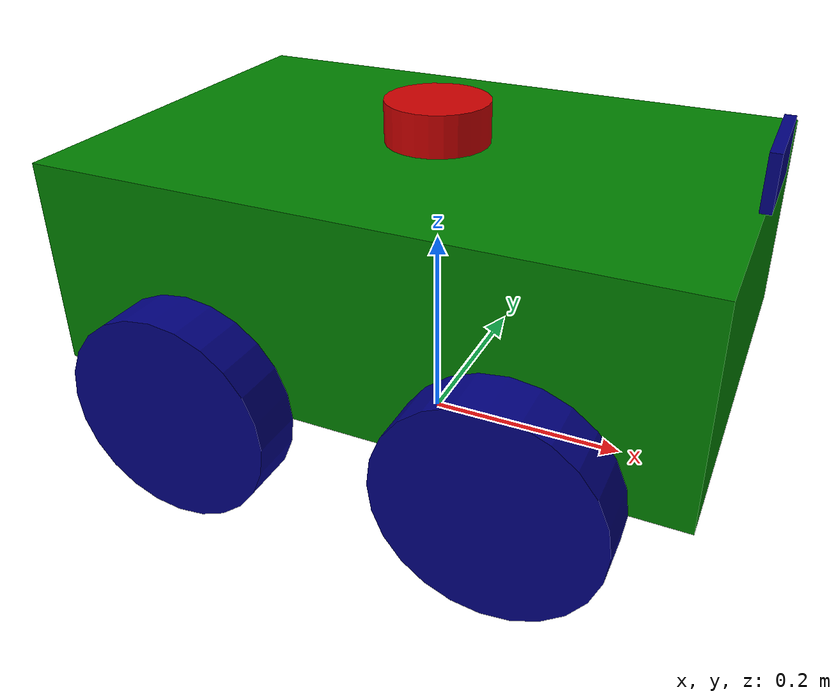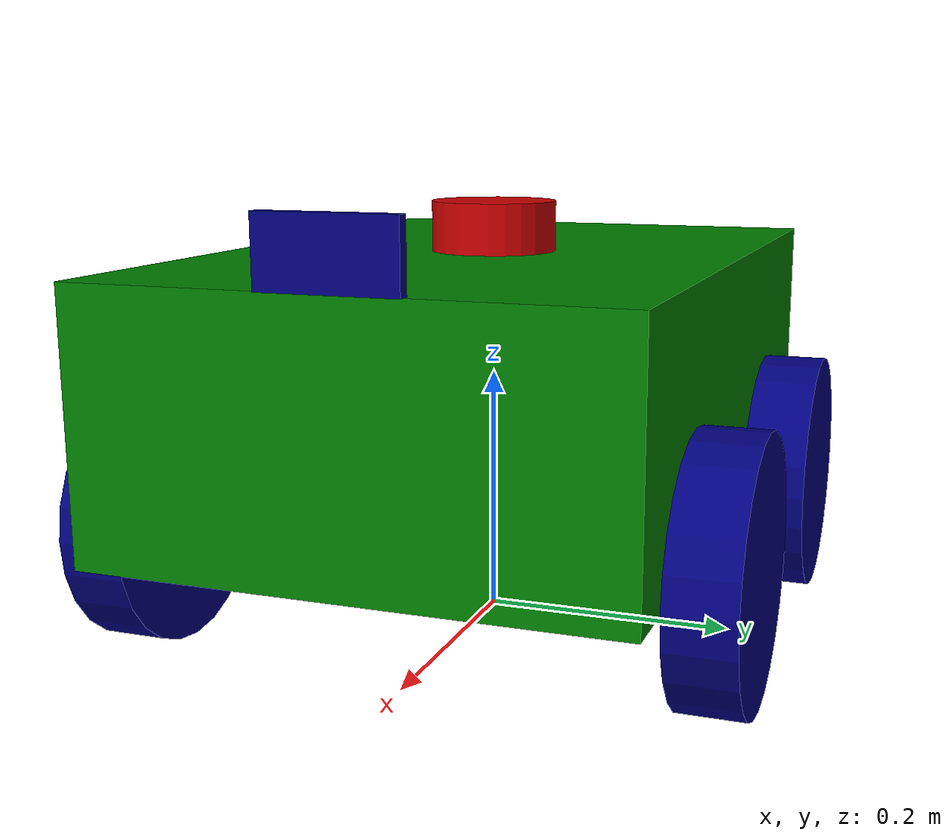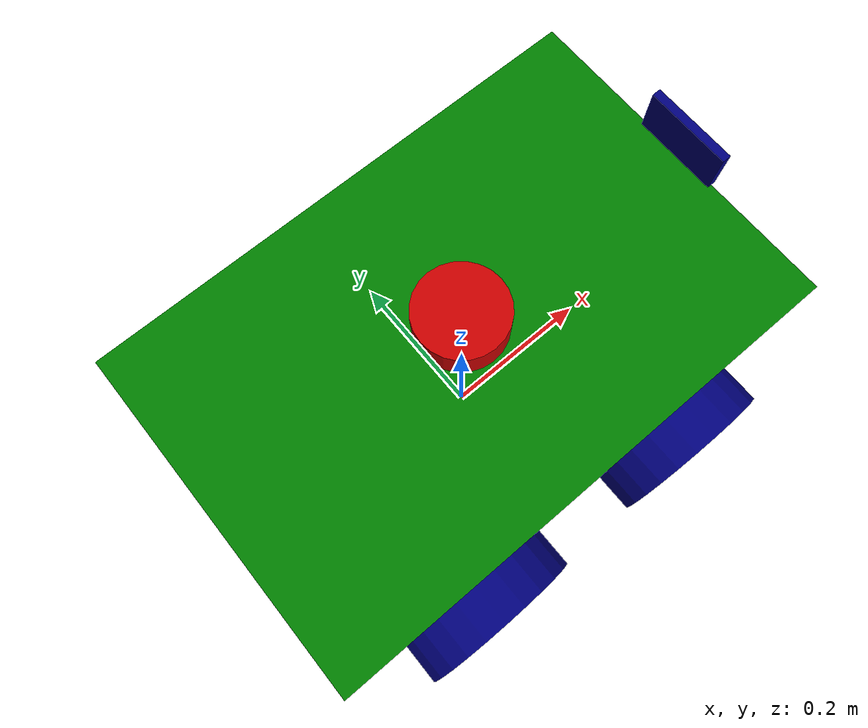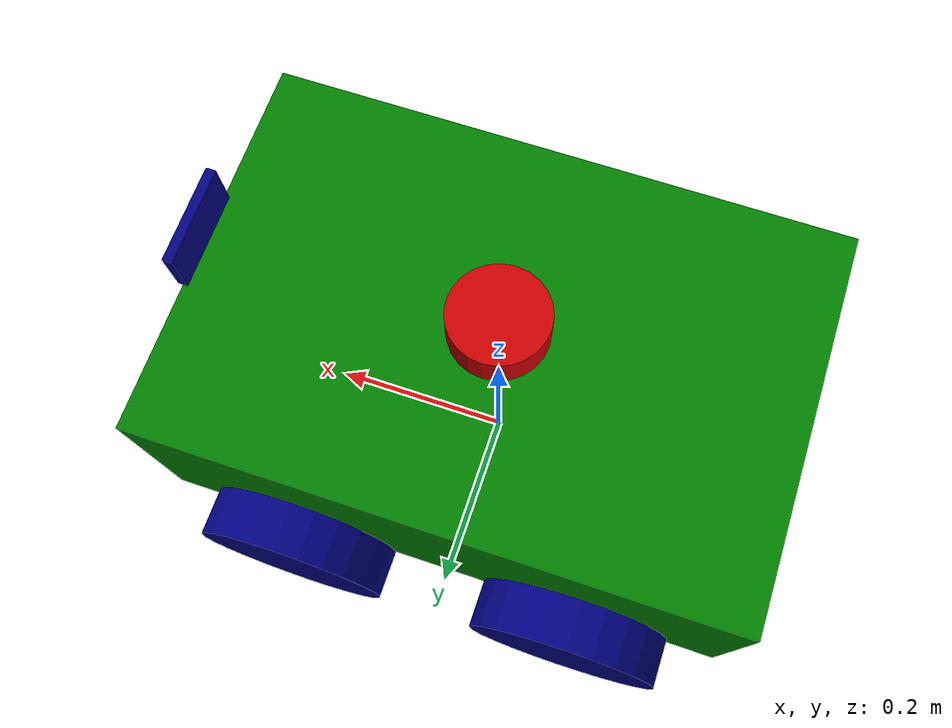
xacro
<?xml version="1.0"?>
<robot name="my_robot" xmlns:xacro="http://www.ros.org/wiki/xacro">

    <xacro:arg name="controllers_config" default="" />

    <xacro:property name="base_length" value="0.6" />
    <xacro:property name="base_width" value="0.4" />
    <xacro:property name="base_height" value="0.2" />
    <xacro:property name="wheel_radius" value="0.1" />
    <xacro:property name="wheel_length" value="0.05" />

    <xacro:macro name="box_inertia" params="m x y z o_xyz o_rpy">
        <inertial>
            <mass value="${m}" />
            <origin xyz="${o_xyz}" rpy="${o_rpy}" />
            <inertia ixx="${(m/12.0) * (y*y + z*z)}" ixy="0" ixz="0"
                     iyy="${(m/12.0) * (x*x + z*z)}" iyz="0"
                     izz="${(m/12.0) * (x*x + y*y)}" />
        </inertial>
    </xacro:macro>

    <xacro:macro name="cylinder_inertia" params="m r h o_xyz o_rpy">
        <inertial>
            <mass value="${m}" />
            <origin xyz="${o_xyz}" rpy="${o_rpy}" />
            <inertia ixx="${(m/12.0) * (3*r*r + h*h)}" ixy="0" ixz="0"
                     iyy="${(m/12.0) * (3*r*r + h*h)}" iyz="0"
                     izz="${(m/2.0) * r*r}" />
        </inertial>
    </xacro:macro>

    <material name="green">
        <color rgba="0 0.5 0 1" />
    </material>

    <material name="blue">
        <color rgba="0 0 0.5 1" />
    </material>

    <material name="red">
        <color rgba="0.8 0 0 1" />
    </material>

    <link name="base_footprint" />

    <link name="base_link">
        <visual>
            <geometry>
                <box size="${base_length} ${base_width} ${base_height}" />
            </geometry>
            <origin xyz="0.0 0.0 ${base_height / 2.0}" rpy="0 0 0" />
            <material name="green" />
        </visual>
        <collision>
            <geometry>
                <box size="${base_length} ${base_width} ${base_height}" />
            </geometry>
            <origin xyz="0.0 0.0 ${base_height / 2.0}" rpy="0 0 0" />
        </collision>

        <xacro:box_inertia m="5" x="${base_length}" y="${base_width}" z="${base_height}" o_xyz="0 0 ${base_height / 2.0}" o_rpy="0 0 0" />
    </link>

    <joint name="base_footprint_joint" type="fixed">
        <parent link="base_footprint" />
        <child link="base_link" />
        <origin xyz="0 0 ${wheel_radius}" rpy="0 0 0" />
    </joint>

    <xacro:macro name="wheel" params="prefix x_reflect y_reflect">
        <link name="${prefix}_wheel_link">
            <visual>
                <geometry>
                    <cylinder radius="${wheel_radius}" length="${wheel_length}" />
                </geometry>
                <origin xyz="0 0 0" rpy="1.5708 0 0" />
                <material name="blue" />
            </visual>

            <collision>
                <geometry>
                    <cylinder radius="${wheel_radius}" length="${wheel_length}" />
                </geometry>
                <origin xyz="0.0 0.0 0" rpy="1.5708 0 0" />
            </collision>

            <xacro:cylinder_inertia m="1" r="${wheel_radius}" h="${wheel_length}" o_xyz="0 0 0" o_rpy="1.5708 0 0" />
        </link>

        <joint name="base_${prefix}_wheel_joint" type="continuous">
            <parent link="base_link" />
            <child link="${prefix}_wheel_link" />
            <origin xyz="${x_reflect * (base_length / 4.0)} ${y_reflect * 0.225} 0" rpy="0 0 0" />
            <axis xyz="0 1 0" />
        </joint>
    </xacro:macro>

    <xacro:wheel prefix="front_right" x_reflect="1"  y_reflect="-1" />
    <xacro:wheel prefix="front_left"  x_reflect="1"  y_reflect="1" />
    <xacro:wheel prefix="rear_right"  x_reflect="-1" y_reflect="-1" />
    <xacro:wheel prefix="rear_left"   x_reflect="-1" y_reflect="1" />

    <!-- ==========================================
         ros2_control hardware interfaces
    ========================================== -->
    <ros2_control name="GazeboSystem" type="system">
        <hardware>
            <plugin>gz_ros2_control/GazeboSimSystem</plugin>
        </hardware>
        <joint name="base_front_left_wheel_joint">
            <command_interface name="velocity"/>
            <state_interface name="position"/>
            <state_interface name="velocity"/>
        </joint>
        <joint name="base_front_right_wheel_joint">
            <command_interface name="velocity"/>
            <state_interface name="position"/>
            <state_interface name="velocity"/>
        </joint>
        <joint name="base_rear_left_wheel_joint">
            <command_interface name="velocity"/>
            <state_interface name="position"/>
            <state_interface name="velocity"/>
        </joint>
        <joint name="base_rear_right_wheel_joint">
            <command_interface name="velocity"/>
            <state_interface name="position"/>
            <state_interface name="velocity"/>
        </joint>
        <!-- IMU sensor state interfaces: lets gz_ros2_control manage the sensor
             and publish it via imu_sensor_broadcaster instead of Gazebo bridge -->
        <sensor name="imu_sensor">
            <state_interface name="orientation.x"/>
            <state_interface name="orientation.y"/>
            <state_interface name="orientation.z"/>
            <state_interface name="orientation.w"/>
            <state_interface name="angular_velocity.x"/>
            <state_interface name="angular_velocity.y"/>
            <state_interface name="angular_velocity.z"/>
            <state_interface name="linear_acceleration.x"/>
            <state_interface name="linear_acceleration.y"/>
            <state_interface name="linear_acceleration.z"/>
        </sensor>
    </ros2_control>

    <!-- gz_ros2_control plugin (starts controller_manager inside Gazebo) -->
    <gazebo>
        <plugin filename="gz_ros2_control-system"
                name="gz_ros2_control::GazeboSimROS2ControlPlugin">
            <parameters>$(arg controllers_config)</parameters>
        </plugin>
    </gazebo>

    <!-- Ground truth odometry from Gazebo model pose -->
    <gazebo>
        <plugin filename="gz-sim-odometry-publisher-system"
                name="gz::sim::systems::OdometryPublisher">
            <odom_frame>odom</odom_frame>
            <robot_base_frame>base_footprint</robot_base_frame>
            <odom_topic>/model/my_robot/ground_truth/odom</odom_topic>
            <tf_topic>/model/my_robot/ground_truth/tf</tf_topic>
            <odom_publish_frequency>50</odom_publish_frequency>
        </plugin>
    </gazebo>

    <!-- Ground truth raw pose (position + orientation only, no velocity) -->
    <gazebo>
        <plugin filename="gz-sim-pose-publisher-system"
                name="gz::sim::systems::PosePublisher">
            <topic>/model/my_robot/pose_gt</topic>
            <publish_link_pose>false</publish_link_pose>
            <publish_visual_pose>false</publish_visual_pose>
            <publish_collision_pose>false</publish_collision_pose>
            <publish_sensor_pose>false</publish_sensor_pose>
            <use_pose_vector_msg>false</use_pose_vector_msg>
            <publish_model_pose>true</publish_model_pose>
            <publish_nested_model_pose>true</publish_nested_model_pose>
        </plugin>
    </gazebo>

    <xacro:property name="camera_length" value="0.01" />
    <xacro:property name="camera_width" value="0.1" />
    <xacro:property name="camera_height" value="0.05" />

    <link name="camera_link">
        <visual>
            <geometry>
                <box size="${camera_length} ${camera_width} ${camera_height}" />
            </geometry>
            <material name="blue" />
        </visual>
        <collision>
            <geometry>
                <box size="${camera_length} ${camera_width} ${camera_height}" />
            </geometry>
        </collision>
        <xacro:box_inertia m="0.1" x="${camera_length}" y="${camera_width}" z="${camera_height}" o_xyz="0 0 0" o_rpy="0 0 0" />
    </link>

    <joint name="base_camera_joint" type="fixed">
        <parent link="base_link" />
        <child link="camera_link" />
        <origin xyz="${base_length / 2.0} 0 ${base_height + camera_height / 2.0}" rpy="0 0 0" />
    </joint>

    <link name="camera_link_optical" />

    <joint name="camera_optical_joint" type="fixed">
        <origin xyz="0 0 0" rpy="${-pi/2} 0 ${-pi/2}" />
            <parent link="camera_link" />
            <child link="camera_link_optical" />
    </joint>

    <gazebo reference="camera_link">
        <sensor name="camera" type="camera">
            <camera>
                <horizontal_fov>1.3962634</horizontal_fov>
                <image>
                    <width>640</width>
                    <height>480</height>
                    <format>R8G8B8</format>
                </image>
                <clip>
                    <near>0.1</near>
                    <far> 15 </far>
                </clip>
                <noise>
                    <type> gaussian </type>
                    <mean> 0.0 </mean>
                    <stddev>0.007 </stddev>
                </noise>
                <optical_frame_id>camera_link_optical</optical_frame_id>
                <camera_info_topic>camera/camera_info</camera_info_topic>
            </camera>
            <always_on>1</always_on>
            <visualize>true</visualize>
            <update_rate>20</update_rate>
            <topic>camera/image_raw</topic>
        </sensor>
    </gazebo>

    <xacro:property name="laser_radius" value="0.05" />
    <xacro:property name="laser_height" value="0.04" />

    <link name="laser_frame">
        <visual>
            <geometry>
                <cylinder radius="${laser_radius}" length="${laser_height}" />
            </geometry>
            <material name="red" />
        </visual>
        <collision>
            <geometry>
                <cylinder radius="${laser_radius}" length="${laser_height}" />
            </geometry>
        </collision>
        <xacro:cylinder_inertia m="0.1" r="${laser_radius}" h="${laser_height}" o_xyz="0 0 0" o_rpy="0 0 0" />
    </link>

    <joint name="base_laser_joint" type="fixed">
        <parent link="base_link" />
        <child link="laser_frame" />
        <origin xyz="0.0 0.0 ${base_height + laser_height / 2.0}" rpy="0 0 0" />
    </joint>

   <gazebo reference="laser_frame">
        <sensor name="lidar" type="lidar">
            <pose>0 0 0 0 0 0</pose>
            <always_on>1</always_on>
            <visualize>true</visualize>
            <update_rate>10</update_rate>
            <topic>scan</topic>
            <lidar>
                <scan>
                    <horizontal>
                        <samples>640</samples>
                        <resolution>1</resolution>
                        <min_angle>-3.1415926</min_angle>
                        <max_angle>3.1415926</max_angle>
                    </horizontal>
                </scan>
                <range>
                    <min>0.08</min>
                    <max>10.0</max>
                </range>
                <noise>
                    <type>gaussian</type>
                    <mean>0.0</mean>
                    <stddev>0.01</stddev>
                </noise>
            </lidar>

            <gz_frame_id>laser_frame</gz_frame_id>

            <frame_id>laser_frame</frame_id>
        </sensor>
    </gazebo>

    <!-- ==========================================
         IMU SENSOR
    ========================================== -->
    <link name="imu_link">
        <visual>
            <geometry>
                <box size="0.05 0.05 0.02" />
            </geometry>
            <material name="red" />
        </visual>
        <collision>
            <geometry>
                <box size="0.05 0.05 0.02" />
            </geometry>
        </collision>
        <xacro:box_inertia m="0.05" x="0.05" y="0.05" z="0.02"
                           o_xyz="0 0 0" o_rpy="0 0 0" />
    </link>

    <joint name="base_imu_joint" type="fixed">
        <parent link="base_link" />
        <child link="imu_link" />
        <origin xyz="0 0 ${base_height}" rpy="0 0 0" />
    </joint>

    <gazebo reference="imu_link">
        <sensor name="imu_sensor" type="imu">
            <always_on>1</always_on>
            <update_rate>100</update_rate>
            <visualize>false</visualize>
            <topic>imu</topic>
            <gz_frame_id>imu_link</gz_frame_id>
            <imu>
                <!-- Noise: budget consumer MEMS level - produces visible deviation -->
                <angular_velocity>
                    <x><noise type="gaussian">
                        <mean>0.0</mean><stddev>0.009</stddev>
                        <bias_mean>0.03</bias_mean><bias_stddev>0.005</bias_stddev>
                    </noise></x>
                    <y><noise type="gaussian">
                        <mean>0.0</mean><stddev>0.009</stddev>
                        <bias_mean>0.03</bias_mean><bias_stddev>0.005</bias_stddev>
                    </noise></y>
                    <z><noise type="gaussian">
                        <mean>0.0</mean><stddev>0.009</stddev>
                        <bias_mean>0.03</bias_mean><bias_stddev>0.005</bias_stddev>
                    </noise></z>
                </angular_velocity>
                <linear_acceleration>
                    <x><noise type="gaussian">
                        <mean>0.0</mean><stddev>0.065</stddev>
                        <bias_mean>0.18</bias_mean><bias_stddev>0.015</bias_stddev>
                    </noise></x>
                    <y><noise type="gaussian">
                        <mean>0.0</mean><stddev>0.065</stddev>
                        <bias_mean>0.18</bias_mean><bias_stddev>0.015</bias_stddev>
                    </noise></y>
                    <z><noise type="gaussian">
                        <mean>0.0</mean><stddev>0.065</stddev>
                        <bias_mean>0.18</bias_mean><bias_stddev>0.015</bias_stddev>
                    </noise></z>
                </linear_acceleration>
            </imu>
        </sensor>
    </gazebo>
</robot>
